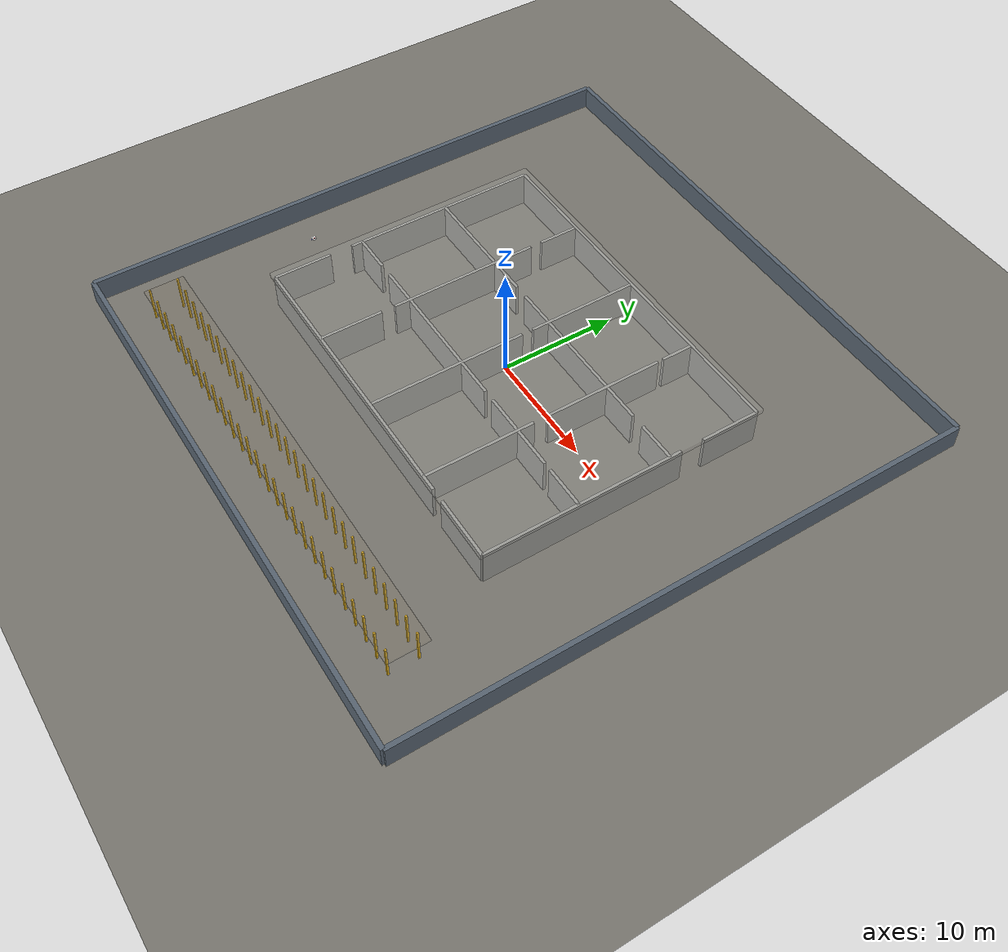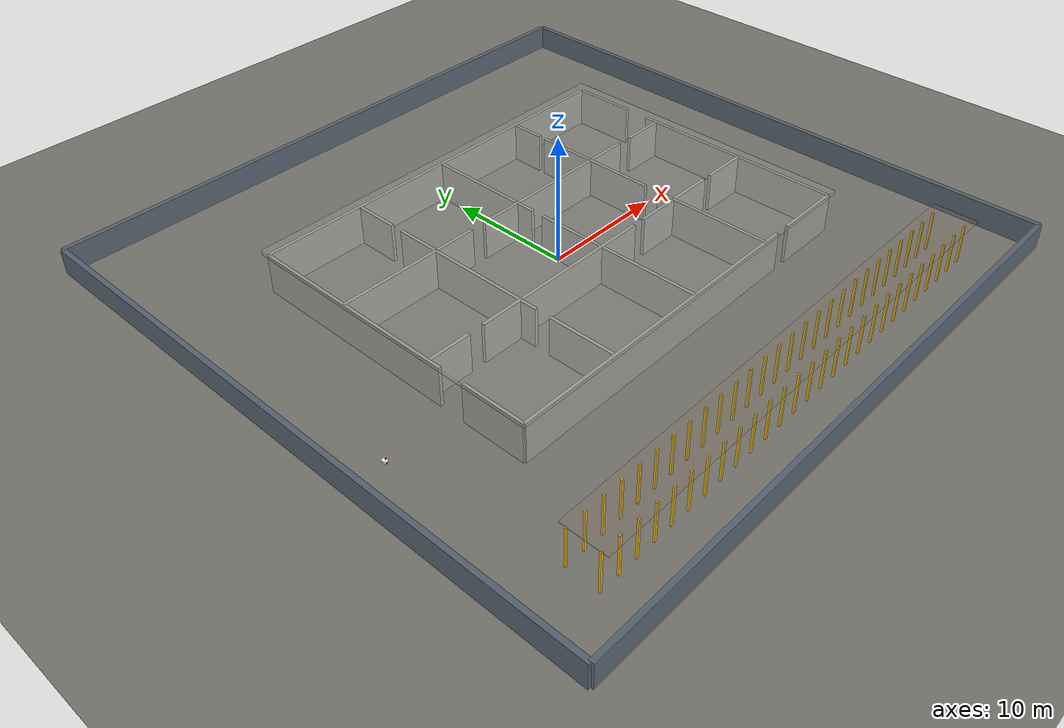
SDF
<sdf version="1.6">
 <world name="w4_structure_decks">
  <model name="ground_plane">
   <static>true</static>
   <link name="link">
    <collision name="collision">
     <geometry><plane><normal>0 0 1</normal><size>300.0 300.0</size></plane></geometry>
    </collision>
    <visual name="visual">
     <geometry><plane><normal>0 0 1</normal><size>300.0 300.0</size></plane></geometry>
     <material>
      <ambient>0.48 0.47 0.44 1</ambient>
      <diffuse>0.48 0.47 0.44 1</diffuse>
      <specular>0.05 0.05 0.05 1</specular>
     </material>
    </visual>
   </link>
  </model>
  <model name="fence_S0">
   <static>true</static>
   <pose>0.0000 -24.5000 1.0000 0 0 0.00000</pose>
   <link name="link">
    <collision name="c"><geometry><box><size>49.0000 0.4000 2.0000</size></box></geometry></collision>
    <visual name="v">
     <geometry><box><size>49.0000 0.4000 2.0000</size></box></geometry>
     <material>
      <ambient>0.350 0.400 0.450 1</ambient>
      <diffuse>0.350 0.400 0.450 1</diffuse>
      <specular>0.1 0.1 0.1 1</specular>
     </material>
    </visual>
   </link>
  </model>
  <model name="fence_N0">
   <static>true</static>
   <pose>0.0000 24.5000 1.0000 0 0 0.00000</pose>
   <link name="link">
    <collision name="c"><geometry><box><size>49.0000 0.4000 2.0000</size></box></geometry></collision>
    <visual name="v">
     <geometry><box><size>49.0000 0.4000 2.0000</size></box></geometry>
     <material>
      <ambient>0.350 0.400 0.450 1</ambient>
      <diffuse>0.350 0.400 0.450 1</diffuse>
      <specular>0.1 0.1 0.1 1</specular>
     </material>
    </visual>
   </link>
  </model>
  <model name="fence_W0">
   <static>true</static>
   <pose>-24.5000 0.0000 1.0000 0 0 1.57080</pose>
   <link name="link">
    <collision name="c"><geometry><box><size>49.0000 0.4000 2.0000</size></box></geometry></collision>
    <visual name="v">
     <geometry><box><size>49.0000 0.4000 2.0000</size></box></geometry>
     <material>
      <ambient>0.350 0.400 0.450 1</ambient>
      <diffuse>0.350 0.400 0.450 1</diffuse>
      <specular>0.1 0.1 0.1 1</specular>
     </material>
    </visual>
   </link>
  </model>
  <model name="fence_E0">
   <static>true</static>
   <pose>24.5000 0.0000 1.0000 0 0 1.57080</pose>
   <link name="link">
    <collision name="c"><geometry><box><size>49.0000 0.4000 2.0000</size></box></geometry></collision>
    <visual name="v">
     <geometry><box><size>49.0000 0.4000 2.0000</size></box></geometry>
     <material>
      <ambient>0.350 0.400 0.450 1</ambient>
      <diffuse>0.350 0.400 0.450 1</diffuse>
      <specular>0.1 0.1 0.1 1</specular>
     </material>
    </visual>
   </link>
  </model>
  <model name="ext_W_0">
   <static>true</static>
   <pose>-16.0000 -9.5000 1.5500 0 0 1.57080</pose>
   <link name="link">
    <collision name="c"><geometry><box><size>5.0000 0.2500 3.1000</size></box></geometry></collision>
    <visual name="v">
     <geometry><box><size>5.0000 0.2500 3.1000</size></box></geometry>
     <material>
      <ambient>0.620 0.620 0.600 1</ambient>
      <diffuse>0.620 0.620 0.600 1</diffuse>
      <specular>0.1 0.1 0.1 1</specular>
     </material>
    </visual>
   </link>
  </model>
  <model name="ext_W_1">
   <static>true</static>
   <pose>-16.0000 3.5000 1.5500 0 0 1.57080</pose>
   <link name="link">
    <collision name="c"><geometry><box><size>17.0000 0.2500 3.1000</size></box></geometry></collision>
    <visual name="v">
     <geometry><box><size>17.0000 0.2500 3.1000</size></box></geometry>
     <material>
      <ambient>0.620 0.620 0.600 1</ambient>
      <diffuse>0.620 0.620 0.600 1</diffuse>
      <specular>0.1 0.1 0.1 1</specular>
     </material>
    </visual>
   </link>
  </model>
  <model name="ext_E_0">
   <static>true</static>
   <pose>16.0000 -3.5000 1.5500 0 0 1.57080</pose>
   <link name="link">
    <collision name="c"><geometry><box><size>17.0000 0.2500 3.1000</size></box></geometry></collision>
    <visual name="v">
     <geometry><box><size>17.0000 0.2500 3.1000</size></box></geometry>
     <material>
      <ambient>0.620 0.620 0.600 1</ambient>
      <diffuse>0.620 0.620 0.600 1</diffuse>
      <specular>0.1 0.1 0.1 1</specular>
     </material>
    </visual>
   </link>
  </model>
  <model name="ext_E_1">
   <static>true</static>
   <pose>16.0000 9.5000 1.5500 0 0 1.57080</pose>
   <link name="link">
    <collision name="c"><geometry><box><size>5.0000 0.2500 3.1000</size></box></geometry></collision>
    <visual name="v">
     <geometry><box><size>5.0000 0.2500 3.1000</size></box></geometry>
     <material>
      <ambient>0.620 0.620 0.600 1</ambient>
      <diffuse>0.620 0.620 0.600 1</diffuse>
      <specular>0.1 0.1 0.1 1</specular>
     </material>
    </visual>
   </link>
  </model>
  <model name="ext_S_0">
   <static>true</static>
   <pose>-3.3000 -12.0000 1.5500 0 0 0.00000</pose>
   <link name="link">
    <collision name="c"><geometry><box><size>25.4000 0.2500 3.1000</size></box></geometry></collision>
    <visual name="v">
     <geometry><box><size>25.4000 0.2500 3.1000</size></box></geometry>
     <material>
      <ambient>0.620 0.620 0.600 1</ambient>
      <diffuse>0.620 0.620 0.600 1</diffuse>
      <specular>0.1 0.1 0.1 1</specular>
     </material>
    </visual>
   </link>
  </model>
  <model name="ext_S_1">
   <static>true</static>
   <pose>13.3000 -12.0000 1.5500 0 0 0.00000</pose>
   <link name="link">
    <collision name="c"><geometry><box><size>5.4000 0.2500 3.1000</size></box></geometry></collision>
    <visual name="v">
     <geometry><box><size>5.4000 0.2500 3.1000</size></box></geometry>
     <material>
      <ambient>0.620 0.620 0.600 1</ambient>
      <diffuse>0.620 0.620 0.600 1</diffuse>
      <specular>0.1 0.1 0.1 1</specular>
     </material>
    </visual>
   </link>
  </model>
  <model name="ext_N_0">
   <static>true</static>
   <pose>0.0000 12.0000 1.5500 0 0 0.00000</pose>
   <link name="link">
    <collision name="c"><geometry><box><size>32.0000 0.2500 3.1000</size></box></geometry></collision>
    <visual name="v">
     <geometry><box><size>32.0000 0.2500 3.1000</size></box></geometry>
     <material>
      <ambient>0.620 0.620 0.600 1</ambient>
      <diffuse>0.620 0.620 0.600 1</diffuse>
      <specular>0.1 0.1 0.1 1</specular>
     </material>
    </visual>
   </link>
  </model>
  <model name="V1_0">
   <static>true</static>
   <pose>-8.0000 -9.3000 1.5500 0 0 1.57080</pose>
   <link name="link">
    <collision name="c"><geometry><box><size>5.4000 0.2500 3.1000</size></box></geometry></collision>
    <visual name="v">
     <geometry><box><size>5.4000 0.2500 3.1000</size></box></geometry>
     <material>
      <ambient>0.620 0.620 0.600 1</ambient>
      <diffuse>0.620 0.620 0.600 1</diffuse>
      <specular>0.1 0.1 0.1 1</specular>
     </material>
    </visual>
   </link>
  </model>
  <model name="V1_1">
   <static>true</static>
   <pose>-8.0000 1.0500 1.5500 0 0 1.57080</pose>
   <link name="link">
    <collision name="c"><geometry><box><size>12.9000 0.2500 3.1000</size></box></geometry></collision>
    <visual name="v">
     <geometry><box><size>12.9000 0.2500 3.1000</size></box></geometry>
     <material>
      <ambient>0.620 0.620 0.600 1</ambient>
      <diffuse>0.620 0.620 0.600 1</diffuse>
      <specular>0.1 0.1 0.1 1</specular>
     </material>
    </visual>
   </link>
  </model>
  <model name="V1_2">
   <static>true</static>
   <pose>-8.0000 10.2500 1.5500 0 0 1.57080</pose>
   <link name="link">
    <collision name="c"><geometry><box><size>3.5000 0.2500 3.1000</size></box></geometry></collision>
    <visual name="v">
     <geometry><box><size>3.5000 0.2500 3.1000</size></box></geometry>
     <material>
      <ambient>0.620 0.620 0.600 1</ambient>
      <diffuse>0.620 0.620 0.600 1</diffuse>
      <specular>0.1 0.1 0.1 1</specular>
     </material>
    </visual>
   </link>
  </model>
  <model name="V2_0">
   <static>true</static>
   <pose>0.0000 -5.2500 1.5500 0 0 1.57080</pose>
   <link name="link">
    <collision name="c"><geometry><box><size>13.5000 0.2500 3.1000</size></box></geometry></collision>
    <visual name="v">
     <geometry><box><size>13.5000 0.2500 3.1000</size></box></geometry>
     <material>
      <ambient>0.620 0.620 0.600 1</ambient>
      <diffuse>0.620 0.620 0.600 1</diffuse>
      <specular>0.1 0.1 0.1 1</specular>
     </material>
    </visual>
   </link>
  </model>
  <model name="V2_1">
   <static>true</static>
   <pose>0.0000 7.2500 1.5500 0 0 1.57080</pose>
   <link name="link">
    <collision name="c"><geometry><box><size>9.5000 0.2500 3.1000</size></box></geometry></collision>
    <visual name="v">
     <geometry><box><size>9.5000 0.2500 3.1000</size></box></geometry>
     <material>
      <ambient>0.620 0.620 0.600 1</ambient>
      <diffuse>0.620 0.620 0.600 1</diffuse>
      <specular>0.1 0.1 0.1 1</specular>
     </material>
    </visual>
   </link>
  </model>
  <model name="V3_0">
   <static>true</static>
   <pose>8.0000 -7.3000 1.5500 0 0 1.57080</pose>
   <link name="link">
    <collision name="c"><geometry><box><size>9.4000 0.2500 3.1000</size></box></geometry></collision>
    <visual name="v">
     <geometry><box><size>9.4000 0.2500 3.1000</size></box></geometry>
     <material>
      <ambient>0.620 0.620 0.600 1</ambient>
      <diffuse>0.620 0.620 0.600 1</diffuse>
      <specular>0.1 0.1 0.1 1</specular>
     </material>
    </visual>
   </link>
  </model>
  <model name="V3_1">
   <static>true</static>
   <pose>8.0000 3.6750 1.5500 0 0 1.57080</pose>
   <link name="link">
    <collision name="c"><geometry><box><size>10.1500 0.2500 3.1000</size></box></geometry></collision>
    <visual name="v">
     <geometry><box><size>10.1500 0.2500 3.1000</size></box></geometry>
     <material>
      <ambient>0.620 0.620 0.600 1</ambient>
      <diffuse>0.620 0.620 0.600 1</diffuse>
      <specular>0.1 0.1 0.1 1</specular>
     </material>
    </visual>
   </link>
  </model>
  <model name="V3_2">
   <static>true</static>
   <pose>8.0000 10.6250 1.5500 0 0 1.57080</pose>
   <link name="link">
    <collision name="c"><geometry><box><size>2.7500 0.2500 3.1000</size></box></geometry></collision>
    <visual name="v">
     <geometry><box><size>2.7500 0.2500 3.1000</size></box></geometry>
     <material>
      <ambient>0.620 0.620 0.600 1</ambient>
      <diffuse>0.620 0.620 0.600 1</diffuse>
      <specular>0.1 0.1 0.1 1</specular>
     </material>
    </visual>
   </link>
  </model>
  <model name="H1_0">
   <static>true</static>
   <pose>-14.3000 -4.0000 1.5500 0 0 0.00000</pose>
   <link name="link">
    <collision name="c"><geometry><box><size>3.4000 0.2500 3.1000</size></box></geometry></collision>
    <visual name="v">
     <geometry><box><size>3.4000 0.2500 3.1000</size></box></geometry>
     <material>
      <ambient>0.620 0.620 0.600 1</ambient>
      <diffuse>0.620 0.620 0.600 1</diffuse>
      <specular>0.1 0.1 0.1 1</specular>
     </material>
    </visual>
   </link>
  </model>
  <model name="H1_1">
   <static>true</static>
   <pose>-3.9500 -4.0000 1.5500 0 0 0.00000</pose>
   <link name="link">
    <collision name="c"><geometry><box><size>14.9000 0.2500 3.1000</size></box></geometry></collision>
    <visual name="v">
     <geometry><box><size>14.9000 0.2500 3.1000</size></box></geometry>
     <material>
      <ambient>0.620 0.620 0.600 1</ambient>
      <diffuse>0.620 0.620 0.600 1</diffuse>
      <specular>0.1 0.1 0.1 1</specular>
     </material>
    </visual>
   </link>
  </model>
  <model name="H1_2">
   <static>true</static>
   <pose>8.0750 -4.0000 1.5500 0 0 0.00000</pose>
   <link name="link">
    <collision name="c"><geometry><box><size>7.1500 0.2500 3.1000</size></box></geometry></collision>
    <visual name="v">
     <geometry><box><size>7.1500 0.2500 3.1000</size></box></geometry>
     <material>
      <ambient>0.620 0.620 0.600 1</ambient>
      <diffuse>0.620 0.620 0.600 1</diffuse>
      <specular>0.1 0.1 0.1 1</specular>
     </material>
    </visual>
   </link>
  </model>
  <model name="H1_3">
   <static>true</static>
   <pose>14.1750 -4.0000 1.5500 0 0 0.00000</pose>
   <link name="link">
    <collision name="c"><geometry><box><size>3.6500 0.2500 3.1000</size></box></geometry></collision>
    <visual name="v">
     <geometry><box><size>3.6500 0.2500 3.1000</size></box></geometry>
     <material>
      <ambient>0.620 0.620 0.600 1</ambient>
      <diffuse>0.620 0.620 0.600 1</diffuse>
      <specular>0.1 0.1 0.1 1</specular>
     </material>
    </visual>
   </link>
  </model>
  <model name="H2_0">
   <static>true</static>
   <pose>-10.3000 4.0000 1.5500 0 0 0.00000</pose>
   <link name="link">
    <collision name="c"><geometry><box><size>11.4000 0.2500 3.1000</size></box></geometry></collision>
    <visual name="v">
     <geometry><box><size>11.4000 0.2500 3.1000</size></box></geometry>
     <material>
      <ambient>0.620 0.620 0.600 1</ambient>
      <diffuse>0.620 0.620 0.600 1</diffuse>
      <specular>0.1 0.1 0.1 1</specular>
     </material>
    </visual>
   </link>
  </model>
  <model name="H2_1">
   <static>true</static>
   <pose>4.0000 4.0000 1.5500 0 0 0.00000</pose>
   <link name="link">
    <collision name="c"><geometry><box><size>14.8000 0.2500 3.1000</size></box></geometry></collision>
    <visual name="v">
     <geometry><box><size>14.8000 0.2500 3.1000</size></box></geometry>
     <material>
      <ambient>0.620 0.620 0.600 1</ambient>
      <diffuse>0.620 0.620 0.600 1</diffuse>
      <specular>0.1 0.1 0.1 1</specular>
     </material>
    </visual>
   </link>
  </model>
  <model name="H2_2">
   <static>true</static>
   <pose>14.3000 4.0000 1.5500 0 0 0.00000</pose>
   <link name="link">
    <collision name="c"><geometry><box><size>3.4000 0.2500 3.1000</size></box></geometry></collision>
    <visual name="v">
     <geometry><box><size>3.4000 0.2500 3.1000</size></box></geometry>
     <material>
      <ambient>0.620 0.620 0.600 1</ambient>
      <diffuse>0.620 0.620 0.600 1</diffuse>
      <specular>0.1 0.1 0.1 1</specular>
     </material>
    </visual>
   </link>
  </model>
  <model name="deck">
   <static>true</static>
   <pose>0.0000 0.0000 3.3000 0 0 0.00000</pose>
   <link name="link">
    <collision name="c"><geometry><box><size>32.6000 24.6000 0.4000</size></box></geometry></collision>
    <visual name="v">
     <transparency>0.8</transparency>
     <geometry><box><size>32.6000 24.6000 0.4000</size></box></geometry>
     <material>
      <ambient>0.720 0.720 0.700 1</ambient>
      <diffuse>0.720 0.720 0.700 1</diffuse>
      <specular>0.1 0.1 0.1 1</specular>
     </material>
    </visual>
   </link>
  </model>
  <model name="post_0_0">
   <static>true</static>
   <pose>-20.0000 -18.8000 1.5500 0 0 0.00000</pose>
   <link name="link">
    <collision name="c"><geometry><box><size>0.1500 0.1500 3.1000</size></box></geometry></collision>
    <visual name="v">
     <geometry><box><size>0.1500 0.1500 3.1000</size></box></geometry>
     <material>
      <ambient>0.900 0.700 0.100 1</ambient>
      <diffuse>0.900 0.700 0.100 1</diffuse>
      <specular>0.1 0.1 0.1 1</specular>
     </material>
    </visual>
   </link>
  </model>
  <model name="post_0_1">
   <static>true</static>
   <pose>-20.0000 -21.2000 1.5500 0 0 0.00000</pose>
   <link name="link">
    <collision name="c"><geometry><box><size>0.1500 0.1500 3.1000</size></box></geometry></collision>
    <visual name="v">
     <geometry><box><size>0.1500 0.1500 3.1000</size></box></geometry>
     <material>
      <ambient>0.900 0.700 0.100 1</ambient>
      <diffuse>0.900 0.700 0.100 1</diffuse>
      <specular>0.1 0.1 0.1 1</specular>
     </material>
    </visual>
   </link>
  </model>
  <model name="post_1_0">
   <static>true</static>
   <pose>-18.5000 -18.8000 1.5500 0 0 0.00000</pose>
   <link name="link">
    <collision name="c"><geometry><box><size>0.1500 0.1500 3.1000</size></box></geometry></collision>
    <visual name="v">
     <geometry><box><size>0.1500 0.1500 3.1000</size></box></geometry>
     <material>
      <ambient>0.900 0.700 0.100 1</ambient>
      <diffuse>0.900 0.700 0.100 1</diffuse>
      <specular>0.1 0.1 0.1 1</specular>
     </material>
    </visual>
   </link>
  </model>
  <model name="post_1_1">
   <static>true</static>
   <pose>-18.5000 -21.2000 1.5500 0 0 0.00000</pose>
   <link name="link">
    <collision name="c"><geometry><box><size>0.1500 0.1500 3.1000</size></box></geometry></collision>
    <visual name="v">
     <geometry><box><size>0.1500 0.1500 3.1000</size></box></geometry>
     <material>
      <ambient>0.900 0.700 0.100 1</ambient>
      <diffuse>0.900 0.700 0.100 1</diffuse>
      <specular>0.1 0.1 0.1 1</specular>
     </material>
    </visual>
   </link>
  </model>
  <model name="post_2_0">
   <static>true</static>
   <pose>-17.0000 -18.8000 1.5500 0 0 0.00000</pose>
   <link name="link">
    <collision name="c"><geometry><box><size>0.1500 0.1500 3.1000</size></box></geometry></collision>
    <visual name="v">
     <geometry><box><size>0.1500 0.1500 3.1000</size></box></geometry>
     <material>
      <ambient>0.900 0.700 0.100 1</ambient>
      <diffuse>0.900 0.700 0.100 1</diffuse>
      <specular>0.1 0.1 0.1 1</specular>
     </material>
    </visual>
   </link>
  </model>
  <model name="post_2_1">
   <static>true</static>
   <pose>-17.0000 -21.2000 1.5500 0 0 0.00000</pose>
   <link name="link">
    <collision name="c"><geometry><box><size>0.1500 0.1500 3.1000</size></box></geometry></collision>
    <visual name="v">
     <geometry><box><size>0.1500 0.1500 3.1000</size></box></geometry>
     <material>
      <ambient>0.900 0.700 0.100 1</ambient>
      <diffuse>0.900 0.700 0.100 1</diffuse>
      <specular>0.1 0.1 0.1 1</specular>
     </material>
    </visual>
   </link>
  </model>
  <model name="post_3_0">
   <static>true</static>
   <pose>-15.5000 -18.8000 1.5500 0 0 0.00000</pose>
   <link name="link">
    <collision name="c"><geometry><box><size>0.1500 0.1500 3.1000</size></box></geometry></collision>
    <visual name="v">
     <geometry><box><size>0.1500 0.1500 3.1000</size></box></geometry>
     <material>
      <ambient>0.900 0.700 0.100 1</ambient>
      <diffuse>0.900 0.700 0.100 1</diffuse>
      <specular>0.1 0.1 0.1 1</specular>
     </material>
    </visual>
   </link>
  </model>
  <model name="post_3_1">
   <static>true</static>
   <pose>-15.5000 -21.2000 1.5500 0 0 0.00000</pose>
   <link name="link">
    <collision name="c"><geometry><box><size>0.1500 0.1500 3.1000</size></box></geometry></collision>
    <visual name="v">
     <geometry><box><size>0.1500 0.1500 3.1000</size></box></geometry>
     <material>
      <ambient>0.900 0.700 0.100 1</ambient>
      <diffuse>0.900 0.700 0.100 1</diffuse>
      <specular>0.1 0.1 0.1 1</specular>
     </material>
    </visual>
   </link>
  </model>
  <model name="post_4_0">
   <static>true</static>
   <pose>-14.0000 -18.8000 1.5500 0 0 0.00000</pose>
   <link name="link">
    <collision name="c"><geometry><box><size>0.1500 0.1500 3.1000</size></box></geometry></collision>
    <visual name="v">
     <geometry><box><size>0.1500 0.1500 3.1000</size></box></geometry>
     <material>
      <ambient>0.900 0.700 0.100 1</ambient>
      <diffuse>0.900 0.700 0.100 1</diffuse>
      <specular>0.1 0.1 0.1 1</specular>
     </material>
    </visual>
   </link>
  </model>
  <model name="post_4_1">
   <static>true</static>
   <pose>-14.0000 -21.2000 1.5500 0 0 0.00000</pose>
   <link name="link">
    <collision name="c"><geometry><box><size>0.1500 0.1500 3.1000</size></box></geometry></collision>
    <visual name="v">
     <geometry><box><size>0.1500 0.1500 3.1000</size></box></geometry>
     <material>
      <ambient>0.900 0.700 0.100 1</ambient>
      <diffuse>0.900 0.700 0.100 1</diffuse>
      <specular>0.1 0.1 0.1 1</specular>
     </material>
    </visual>
   </link>
  </model>
  <model name="post_5_0">
   <static>true</static>
   <pose>-12.5000 -18.8000 1.5500 0 0 0.00000</pose>
   <link name="link">
    <collision name="c"><geometry><box><size>0.1500 0.1500 3.1000</size></box></geometry></collision>
    <visual name="v">
     <geometry><box><size>0.1500 0.1500 3.1000</size></box></geometry>
     <material>
      <ambient>0.900 0.700 0.100 1</ambient>
      <diffuse>0.900 0.700 0.100 1</diffuse>
      <specular>0.1 0.1 0.1 1</specular>
     </material>
    </visual>
   </link>
  </model>
  <model name="post_5_1">
   <static>true</static>
   <pose>-12.5000 -21.2000 1.5500 0 0 0.00000</pose>
   <link name="link">
    <collision name="c"><geometry><box><size>0.1500 0.1500 3.1000</size></box></geometry></collision>
    <visual name="v">
     <geometry><box><size>0.1500 0.1500 3.1000</size></box></geometry>
     <material>
      <ambient>0.900 0.700 0.100 1</ambient>
      <diffuse>0.900 0.700 0.100 1</diffuse>
      <specular>0.1 0.1 0.1 1</specular>
     </material>
    </visual>
   </link>
  </model>
  <model name="post_6_0">
   <static>true</static>
   <pose>-11.0000 -18.8000 1.5500 0 0 0.00000</pose>
   <link name="link">
    <collision name="c"><geometry><box><size>0.1500 0.1500 3.1000</size></box></geometry></collision>
    <visual name="v">
     <geometry><box><size>0.1500 0.1500 3.1000</size></box></geometry>
     <material>
      <ambient>0.900 0.700 0.100 1</ambient>
      <diffuse>0.900 0.700 0.100 1</diffuse>
      <specular>0.1 0.1 0.1 1</specular>
     </material>
    </visual>
   </link>
  </model>
  <model name="post_6_1">
   <static>true</static>
   <pose>-11.0000 -21.2000 1.5500 0 0 0.00000</pose>
   <link name="link">
    <collision name="c"><geometry><box><size>0.1500 0.1500 3.1000</size></box></geometry></collision>
    <visual name="v">
     <geometry><box><size>0.1500 0.1500 3.1000</size></box></geometry>
     <material>
      <ambient>0.900 0.700 0.100 1</ambient>
      <diffuse>0.900 0.700 0.100 1</diffuse>
      <specular>0.1 0.1 0.1 1</specular>
     </material>
    </visual>
   </link>
  </model>
  <model name="post_7_0">
   <static>true</static>
   <pose>-9.5000 -18.8000 1.5500 0 0 0.00000</pose>
   <link name="link">
    <collision name="c"><geometry><box><size>0.1500 0.1500 3.1000</size></box></geometry></collision>
    <visual name="v">
     <geometry><box><size>0.1500 0.1500 3.1000</size></box></geometry>
     <material>
      <ambient>0.900 0.700 0.100 1</ambient>
      <diffuse>0.900 0.700 0.100 1</diffuse>
      <specular>0.1 0.1 0.1 1</specular>
     </material>
    </visual>
   </link>
  </model>
  <model name="post_7_1">
   <static>true</static>
   <pose>-9.5000 -21.2000 1.5500 0 0 0.00000</pose>
   <link name="link">
    <collision name="c"><geometry><box><size>0.1500 0.1500 3.1000</size></box></geometry></collision>
    <visual name="v">
     <geometry><box><size>0.1500 0.1500 3.1000</size></box></geometry>
     <material>
      <ambient>0.900 0.700 0.100 1</ambient>
      <diffuse>0.900 0.700 0.100 1</diffuse>
      <specular>0.1 0.1 0.1 1</specular>
     </material>
    </visual>
   </link>
  </model>
  <model name="post_8_0">
   <static>true</static>
   <pose>-8.0000 -18.8000 1.5500 0 0 0.00000</pose>
   <link name="link">
    <collision name="c"><geometry><box><size>0.1500 0.1500 3.1000</size></box></geometry></collision>
    <visual name="v">
     <geometry><box><size>0.1500 0.1500 3.1000</size></box></geometry>
     <material>
      <ambient>0.900 0.700 0.100 1</ambient>
      <diffuse>0.900 0.700 0.100 1</diffuse>
      <specular>0.1 0.1 0.1 1</specular>
     </material>
    </visual>
   </link>
  </model>
  <model name="post_8_1">
   <static>true</static>
   <pose>-8.0000 -21.2000 1.5500 0 0 0.00000</pose>
   <link name="link">
    <collision name="c"><geometry><box><size>0.1500 0.1500 3.1000</size></box></geometry></collision>
    <visual name="v">
     <geometry><box><size>0.1500 0.1500 3.1000</size></box></geometry>
     <material>
      <ambient>0.900 0.700 0.100 1</ambient>
      <diffuse>0.900 0.700 0.100 1</diffuse>
      <specular>0.1 0.1 0.1 1</specular>
     </material>
    </visual>
   </link>
  </model>
  <model name="post_9_0">
   <static>true</static>
   <pose>-6.5000 -18.8000 1.5500 0 0 0.00000</pose>
   <link name="link">
    <collision name="c"><geometry><box><size>0.1500 0.1500 3.1000</size></box></geometry></collision>
    <visual name="v">
     <geometry><box><size>0.1500 0.1500 3.1000</size></box></geometry>
     <material>
      <ambient>0.900 0.700 0.100 1</ambient>
      <diffuse>0.900 0.700 0.100 1</diffuse>
      <specular>0.1 0.1 0.1 1</specular>
     </material>
    </visual>
   </link>
  </model>
  <model name="post_9_1">
   <static>true</static>
   <pose>-6.5000 -21.2000 1.5500 0 0 0.00000</pose>
   <link name="link">
    <collision name="c"><geometry><box><size>0.1500 0.1500 3.1000</size></box></geometry></collision>
    <visual name="v">
     <geometry><box><size>0.1500 0.1500 3.1000</size></box></geometry>
     <material>
      <ambient>0.900 0.700 0.100 1</ambient>
      <diffuse>0.900 0.700 0.100 1</diffuse>
      <specular>0.1 0.1 0.1 1</specular>
     </material>
    </visual>
   </link>
  </model>
  <model name="post_10_0">
   <static>true</static>
   <pose>-5.0000 -18.8000 1.5500 0 0 0.00000</pose>
   <link name="link">
    <collision name="c"><geometry><box><size>0.1500 0.1500 3.1000</size></box></geometry></collision>
    <visual name="v">
     <geometry><box><size>0.1500 0.1500 3.1000</size></box></geometry>
     <material>
      <ambient>0.900 0.700 0.100 1</ambient>
      <diffuse>0.900 0.700 0.100 1</diffuse>
      <specular>0.1 0.1 0.1 1</specular>
     </material>
    </visual>
   </link>
  </model>
  <model name="post_10_1">
   <static>true</static>
   <pose>-5.0000 -21.2000 1.5500 0 0 0.00000</pose>
   <link name="link">
    <collision name="c"><geometry><box><size>0.1500 0.1500 3.1000</size></box></geometry></collision>
    <visual name="v">
     <geometry><box><size>0.1500 0.1500 3.1000</size></box></geometry>
     <material>
      <ambient>0.900 0.700 0.100 1</ambient>
      <diffuse>0.900 0.700 0.100 1</diffuse>
      <specular>0.1 0.1 0.1 1</specular>
     </material>
    </visual>
   </link>
  </model>
  <model name="post_11_0">
   <static>true</static>
   <pose>-3.5000 -18.8000 1.5500 0 0 0.00000</pose>
   <link name="link">
    <collision name="c"><geometry><box><size>0.1500 0.1500 3.1000</size></box></geometry></collision>
    <visual name="v">
     <geometry><box><size>0.1500 0.1500 3.1000</size></box></geometry>
     <material>
      <ambient>0.900 0.700 0.100 1</ambient>
      <diffuse>0.900 0.700 0.100 1</diffuse>
      <specular>0.1 0.1 0.1 1</specular>
     </material>
    </visual>
   </link>
  </model>
  <model name="post_11_1">
   <static>true</static>
   <pose>-3.5000 -21.2000 1.5500 0 0 0.00000</pose>
   <link name="link">
    <collision name="c"><geometry><box><size>0.1500 0.1500 3.1000</size></box></geometry></collision>
    <visual name="v">
     <geometry><box><size>0.1500 0.1500 3.1000</size></box></geometry>
     <material>
      <ambient>0.900 0.700 0.100 1</ambient>
      <diffuse>0.900 0.700 0.100 1</diffuse>
      <specular>0.1 0.1 0.1 1</specular>
     </material>
    </visual>
   </link>
  </model>
  <model name="post_12_0">
   <static>true</static>
   <pose>-2.0000 -18.8000 1.5500 0 0 0.00000</pose>
   <link name="link">
    <collision name="c"><geometry><box><size>0.1500 0.1500 3.1000</size></box></geometry></collision>
    <visual name="v">
     <geometry><box><size>0.1500 0.1500 3.1000</size></box></geometry>
     <material>
      <ambient>0.900 0.700 0.100 1</ambient>
      <diffuse>0.900 0.700 0.100 1</diffuse>
      <specular>0.1 0.1 0.1 1</specular>
     </material>
    </visual>
   </link>
  </model>
  <model name="post_12_1">
   <static>true</static>
   <pose>-2.0000 -21.2000 1.5500 0 0 0.00000</pose>
   <link name="link">
    <collision name="c"><geometry><box><size>0.1500 0.1500 3.1000</size></box></geometry></collision>
    <visual name="v">
     <geometry><box><size>0.1500 0.1500 3.1000</size></box></geometry>
     <material>
      <ambient>0.900 0.700 0.100 1</ambient>
      <diffuse>0.900 0.700 0.100 1</diffuse>
      <specular>0.1 0.1 0.1 1</specular>
     </material>
    </visual>
   </link>
  </model>
  <model name="post_13_0">
   <static>true</static>
   <pose>-0.5000 -18.8000 1.5500 0 0 0.00000</pose>
   <link name="link">
    <collision name="c"><geometry><box><size>0.1500 0.1500 3.1000</size></box></geometry></collision>
    <visual name="v">
     <geometry><box><size>0.1500 0.1500 3.1000</size></box></geometry>
     <material>
      <ambient>0.900 0.700 0.100 1</ambient>
      <diffuse>0.900 0.700 0.100 1</diffuse>
      <specular>0.1 0.1 0.1 1</specular>
     </material>
    </visual>
   </link>
  </model>
  <model name="post_13_1">
   <static>true</static>
   <pose>-0.5000 -21.2000 1.5500 0 0 0.00000</pose>
   <link name="link">
    <collision name="c"><geometry><box><size>0.1500 0.1500 3.1000</size></box></geometry></collision>
    <visual name="v">
     <geometry><box><size>0.1500 0.1500 3.1000</size></box></geometry>
     <material>
      <ambient>0.900 0.700 0.100 1</ambient>
      <diffuse>0.900 0.700 0.100 1</diffuse>
      <specular>0.1 0.1 0.1 1</specular>
     </material>
    </visual>
   </link>
  </model>
  <model name="post_14_0">
   <static>true</static>
   <pose>1.0000 -18.8000 1.5500 0 0 0.00000</pose>
   <link name="link">
    <collision name="c"><geometry><box><size>0.1500 0.1500 3.1000</size></box></geometry></collision>
    <visual name="v">
     <geometry><box><size>0.1500 0.1500 3.1000</size></box></geometry>
     <material>
      <ambient>0.900 0.700 0.100 1</ambient>
      <diffuse>0.900 0.700 0.100 1</diffuse>
      <specular>0.1 0.1 0.1 1</specular>
     </material>
    </visual>
   </link>
  </model>
  <model name="post_14_1">
   <static>true</static>
   <pose>1.0000 -21.2000 1.5500 0 0 0.00000</pose>
   <link name="link">
    <collision name="c"><geometry><box><size>0.1500 0.1500 3.1000</size></box></geometry></collision>
    <visual name="v">
     <geometry><box><size>0.1500 0.1500 3.1000</size></box></geometry>
     <material>
      <ambient>0.900 0.700 0.100 1</ambient>
      <diffuse>0.900 0.700 0.100 1</diffuse>
      <specular>0.1 0.1 0.1 1</specular>
     </material>
    </visual>
   </link>
  </model>
  <model name="post_15_0">
   <static>true</static>
   <pose>2.5000 -18.8000 1.5500 0 0 0.00000</pose>
   <link name="link">
    <collision name="c"><geometry><box><size>0.1500 0.1500 3.1000</size></box></geometry></collision>
    <visual name="v">
     <geometry><box><size>0.1500 0.1500 3.1000</size></box></geometry>
     <material>
      <ambient>0.900 0.700 0.100 1</ambient>
      <diffuse>0.900 0.700 0.100 1</diffuse>
      <specular>0.1 0.1 0.1 1</specular>
     </material>
    </visual>
   </link>
  </model>
  <model name="post_15_1">
   <static>true</static>
   <pose>2.5000 -21.2000 1.5500 0 0 0.00000</pose>
   <link name="link">
    <collision name="c"><geometry><box><size>0.1500 0.1500 3.1000</size></box></geometry></collision>
    <visual name="v">
     <geometry><box><size>0.1500 0.1500 3.1000</size></box></geometry>
     <material>
      <ambient>0.900 0.700 0.100 1</ambient>
      <diffuse>0.900 0.700 0.100 1</diffuse>
      <specular>0.1 0.1 0.1 1</specular>
     </material>
    </visual>
   </link>
  </model>
  <model name="post_16_0">
   <static>true</static>
   <pose>4.0000 -18.8000 1.5500 0 0 0.00000</pose>
   <link name="link">
    <collision name="c"><geometry><box><size>0.1500 0.1500 3.1000</size></box></geometry></collision>
    <visual name="v">
     <geometry><box><size>0.1500 0.1500 3.1000</size></box></geometry>
     <material>
      <ambient>0.900 0.700 0.100 1</ambient>
      <diffuse>0.900 0.700 0.100 1</diffuse>
      <specular>0.1 0.1 0.1 1</specular>
     </material>
    </visual>
   </link>
  </model>
  <model name="post_16_1">
   <static>true</static>
   <pose>4.0000 -21.2000 1.5500 0 0 0.00000</pose>
   <link name="link">
    <collision name="c"><geometry><box><size>0.1500 0.1500 3.1000</size></box></geometry></collision>
    <visual name="v">
     <geometry><box><size>0.1500 0.1500 3.1000</size></box></geometry>
     <material>
      <ambient>0.900 0.700 0.100 1</ambient>
      <diffuse>0.900 0.700 0.100 1</diffuse>
      <specular>0.1 0.1 0.1 1</specular>
     </material>
    </visual>
   </link>
  </model>
  <model name="post_17_0">
   <static>true</static>
   <pose>5.5000 -18.8000 1.5500 0 0 0.00000</pose>
   <link name="link">
    <collision name="c"><geometry><box><size>0.1500 0.1500 3.1000</size></box></geometry></collision>
    <visual name="v">
     <geometry><box><size>0.1500 0.1500 3.1000</size></box></geometry>
     <material>
      <ambient>0.900 0.700 0.100 1</ambient>
      <diffuse>0.900 0.700 0.100 1</diffuse>
      <specular>0.1 0.1 0.1 1</specular>
     </material>
    </visual>
   </link>
  </model>
  <model name="post_17_1">
   <static>true</static>
   <pose>5.5000 -21.2000 1.5500 0 0 0.00000</pose>
   <link name="link">
    <collision name="c"><geometry><box><size>0.1500 0.1500 3.1000</size></box></geometry></collision>
    <visual name="v">
     <geometry><box><size>0.1500 0.1500 3.1000</size></box></geometry>
     <material>
      <ambient>0.900 0.700 0.100 1</ambient>
      <diffuse>0.900 0.700 0.100 1</diffuse>
      <specular>0.1 0.1 0.1 1</specular>
     </material>
    </visual>
   </link>
  </model>
  <model name="post_18_0">
   <static>true</static>
   <pose>7.0000 -18.8000 1.5500 0 0 0.00000</pose>
   <link name="link">
    <collision name="c"><geometry><box><size>0.1500 0.1500 3.1000</size></box></geometry></collision>
    <visual name="v">
     <geometry><box><size>0.1500 0.1500 3.1000</size></box></geometry>
     <material>
      <ambient>0.900 0.700 0.100 1</ambient>
      <diffuse>0.900 0.700 0.100 1</diffuse>
      <specular>0.1 0.1 0.1 1</specular>
     </material>
    </visual>
   </link>
  </model>
  <model name="post_18_1">
   <static>true</static>
   <pose>7.0000 -21.2000 1.5500 0 0 0.00000</pose>
   <link name="link">
    <collision name="c"><geometry><box><size>0.1500 0.1500 3.1000</size></box></geometry></collision>
    <visual name="v">
     <geometry><box><size>0.1500 0.1500 3.1000</size></box></geometry>
     <material>
      <ambient>0.900 0.700 0.100 1</ambient>
      <diffuse>0.900 0.700 0.100 1</diffuse>
      <specular>0.1 0.1 0.1 1</specular>
     </material>
    </visual>
   </link>
  </model>
  <model name="post_19_0">
   <static>true</static>
   <pose>8.5000 -18.8000 1.5500 0 0 0.00000</pose>
   <link name="link">
    <collision name="c"><geometry><box><size>0.1500 0.1500 3.1000</size></box></geometry></collision>
    <visual name="v">
     <geometry><box><size>0.1500 0.1500 3.1000</size></box></geometry>
     <material>
      <ambient>0.900 0.700 0.100 1</ambient>
      <diffuse>0.900 0.700 0.100 1</diffuse>
      <specular>0.1 0.1 0.1 1</specular>
     </material>
    </visual>
   </link>
  </model>
  <model name="post_19_1">
   <static>true</static>
   <pose>8.5000 -21.2000 1.5500 0 0 0.00000</pose>
   <link name="link">
    <collision name="c"><geometry><box><size>0.1500 0.1500 3.1000</size></box></geometry></collision>
    <visual name="v">
     <geometry><box><size>0.1500 0.1500 3.1000</size></box></geometry>
     <material>
      <ambient>0.900 0.700 0.100 1</ambient>
      <diffuse>0.900 0.700 0.100 1</diffuse>
      <specular>0.1 0.1 0.1 1</specular>
     </material>
    </visual>
   </link>
  </model>
  <model name="post_20_0">
   <static>true</static>
   <pose>10.0000 -18.8000 1.5500 0 0 0.00000</pose>
   <link name="link">
    <collision name="c"><geometry><box><size>0.1500 0.1500 3.1000</size></box></geometry></collision>
    <visual name="v">
     <geometry><box><size>0.1500 0.1500 3.1000</size></box></geometry>
     <material>
      <ambient>0.900 0.700 0.100 1</ambient>
      <diffuse>0.900 0.700 0.100 1</diffuse>
      <specular>0.1 0.1 0.1 1</specular>
     </material>
    </visual>
   </link>
  </model>
  <model name="post_20_1">
   <static>true</static>
   <pose>10.0000 -21.2000 1.5500 0 0 0.00000</pose>
   <link name="link">
    <collision name="c"><geometry><box><size>0.1500 0.1500 3.1000</size></box></geometry></collision>
    <visual name="v">
     <geometry><box><size>0.1500 0.1500 3.1000</size></box></geometry>
     <material>
      <ambient>0.900 0.700 0.100 1</ambient>
      <diffuse>0.900 0.700 0.100 1</diffuse>
      <specular>0.1 0.1 0.1 1</specular>
     </material>
    </visual>
   </link>
  </model>
  <model name="post_21_0">
   <static>true</static>
   <pose>11.5000 -18.8000 1.5500 0 0 0.00000</pose>
   <link name="link">
    <collision name="c"><geometry><box><size>0.1500 0.1500 3.1000</size></box></geometry></collision>
    <visual name="v">
     <geometry><box><size>0.1500 0.1500 3.1000</size></box></geometry>
     <material>
      <ambient>0.900 0.700 0.100 1</ambient>
      <diffuse>0.900 0.700 0.100 1</diffuse>
      <specular>0.1 0.1 0.1 1</specular>
     </material>
    </visual>
   </link>
  </model>
  <model name="post_21_1">
   <static>true</static>
   <pose>11.5000 -21.2000 1.5500 0 0 0.00000</pose>
   <link name="link">
    <collision name="c"><geometry><box><size>0.1500 0.1500 3.1000</size></box></geometry></collision>
    <visual name="v">
     <geometry><box><size>0.1500 0.1500 3.1000</size></box></geometry>
     <material>
      <ambient>0.900 0.700 0.100 1</ambient>
      <diffuse>0.900 0.700 0.100 1</diffuse>
      <specular>0.1 0.1 0.1 1</specular>
     </material>
    </visual>
   </link>
  </model>
  <model name="post_22_0">
   <static>true</static>
   <pose>13.0000 -18.8000 1.5500 0 0 0.00000</pose>
   <link name="link">
    <collision name="c"><geometry><box><size>0.1500 0.1500 3.1000</size></box></geometry></collision>
    <visual name="v">
     <geometry><box><size>0.1500 0.1500 3.1000</size></box></geometry>
     <material>
      <ambient>0.900 0.700 0.100 1</ambient>
      <diffuse>0.900 0.700 0.100 1</diffuse>
      <specular>0.1 0.1 0.1 1</specular>
     </material>
    </visual>
   </link>
  </model>
  <model name="post_22_1">
   <static>true</static>
   <pose>13.0000 -21.2000 1.5500 0 0 0.00000</pose>
   <link name="link">
    <collision name="c"><geometry><box><size>0.1500 0.1500 3.1000</size></box></geometry></collision>
    <visual name="v">
     <geometry><box><size>0.1500 0.1500 3.1000</size></box></geometry>
     <material>
      <ambient>0.900 0.700 0.100 1</ambient>
      <diffuse>0.900 0.700 0.100 1</diffuse>
      <specular>0.1 0.1 0.1 1</specular>
     </material>
    </visual>
   </link>
  </model>
  <model name="post_23_0">
   <static>true</static>
   <pose>14.5000 -18.8000 1.5500 0 0 0.00000</pose>
   <link name="link">
    <collision name="c"><geometry><box><size>0.1500 0.1500 3.1000</size></box></geometry></collision>
    <visual name="v">
     <geometry><box><size>0.1500 0.1500 3.1000</size></box></geometry>
     <material>
      <ambient>0.900 0.700 0.100 1</ambient>
      <diffuse>0.900 0.700 0.100 1</diffuse>
      <specular>0.1 0.1 0.1 1</specular>
     </material>
    </visual>
   </link>
  </model>
  <model name="post_23_1">
   <static>true</static>
   <pose>14.5000 -21.2000 1.5500 0 0 0.00000</pose>
   <link name="link">
    <collision name="c"><geometry><box><size>0.1500 0.1500 3.1000</size></box></geometry></collision>
    <visual name="v">
     <geometry><box><size>0.1500 0.1500 3.1000</size></box></geometry>
     <material>
      <ambient>0.900 0.700 0.100 1</ambient>
      <diffuse>0.900 0.700 0.100 1</diffuse>
      <specular>0.1 0.1 0.1 1</specular>
     </material>
    </visual>
   </link>
  </model>
  <model name="post_24_0">
   <static>true</static>
   <pose>16.0000 -18.8000 1.5500 0 0 0.00000</pose>
   <link name="link">
    <collision name="c"><geometry><box><size>0.1500 0.1500 3.1000</size></box></geometry></collision>
    <visual name="v">
     <geometry><box><size>0.1500 0.1500 3.1000</size></box></geometry>
     <material>
      <ambient>0.900 0.700 0.100 1</ambient>
      <diffuse>0.900 0.700 0.100 1</diffuse>
      <specular>0.1 0.1 0.1 1</specular>
     </material>
    </visual>
   </link>
  </model>
  <model name="post_24_1">
   <static>true</static>
   <pose>16.0000 -21.2000 1.5500 0 0 0.00000</pose>
   <link name="link">
    <collision name="c"><geometry><box><size>0.1500 0.1500 3.1000</size></box></geometry></collision>
    <visual name="v">
     <geometry><box><size>0.1500 0.1500 3.1000</size></box></geometry>
     <material>
      <ambient>0.900 0.700 0.100 1</ambient>
      <diffuse>0.900 0.700 0.100 1</diffuse>
      <specular>0.1 0.1 0.1 1</specular>
     </material>
    </visual>
   </link>
  </model>
  <model name="post_25_0">
   <static>true</static>
   <pose>17.5000 -18.8000 1.5500 0 0 0.00000</pose>
   <link name="link">
    <collision name="c"><geometry><box><size>0.1500 0.1500 3.1000</size></box></geometry></collision>
    <visual name="v">
     <geometry><box><size>0.1500 0.1500 3.1000</size></box></geometry>
     <material>
      <ambient>0.900 0.700 0.100 1</ambient>
      <diffuse>0.900 0.700 0.100 1</diffuse>
      <specular>0.1 0.1 0.1 1</specular>
     </material>
    </visual>
   </link>
  </model>
  <model name="post_25_1">
   <static>true</static>
   <pose>17.5000 -21.2000 1.5500 0 0 0.00000</pose>
   <link name="link">
    <collision name="c"><geometry><box><size>0.1500 0.1500 3.1000</size></box></geometry></collision>
    <visual name="v">
     <geometry><box><size>0.1500 0.1500 3.1000</size></box></geometry>
     <material>
      <ambient>0.900 0.700 0.100 1</ambient>
      <diffuse>0.900 0.700 0.100 1</diffuse>
      <specular>0.1 0.1 0.1 1</specular>
     </material>
    </visual>
   </link>
  </model>
  <model name="post_26_0">
   <static>true</static>
   <pose>19.0000 -18.8000 1.5500 0 0 0.00000</pose>
   <link name="link">
    <collision name="c"><geometry><box><size>0.1500 0.1500 3.1000</size></box></geometry></collision>
    <visual name="v">
     <geometry><box><size>0.1500 0.1500 3.1000</size></box></geometry>
     <material>
      <ambient>0.900 0.700 0.100 1</ambient>
      <diffuse>0.900 0.700 0.100 1</diffuse>
      <specular>0.1 0.1 0.1 1</specular>
     </material>
    </visual>
   </link>
  </model>
  <model name="post_26_1">
   <static>true</static>
   <pose>19.0000 -21.2000 1.5500 0 0 0.00000</pose>
   <link name="link">
    <collision name="c"><geometry><box><size>0.1500 0.1500 3.1000</size></box></geometry></collision>
    <visual name="v">
     <geometry><box><size>0.1500 0.1500 3.1000</size></box></geometry>
     <material>
      <ambient>0.900 0.700 0.100 1</ambient>
      <diffuse>0.900 0.700 0.100 1</diffuse>
      <specular>0.1 0.1 0.1 1</specular>
     </material>
    </visual>
   </link>
  </model>
  <model name="walk_roof">
   <static>true</static>
   <pose>0.0000 -20.0000 3.1600 0 0 0.00000</pose>
   <link name="link">
    <collision name="c"><geometry><box><size>40.0000 3.4000 0.1200</size></box></geometry></collision>
    <visual name="v">
     <transparency>0.8</transparency>
     <geometry><box><size>40.0000 3.4000 0.1200</size></box></geometry>
     <material>
      <ambient>0.550 0.500 0.400 1</ambient>
      <diffuse>0.550 0.500 0.400 1</diffuse>
      <specular>0.1 0.1 0.1 1</specular>
     </material>
    </visual>
   </link>
  </model>
  <include>
   <name>nav_ugv</name>
   <uri>model://nav_ugv</uri>
   <pose>-21.500 -6.000 0.000 0 0 0.0000</pose>
   <plugin filename="ignition-gazebo-diff-drive-system" name="gz::sim::systems::DiffDrive">
    <left_joint>left_wheel_joint</left_joint>
    <left_joint>rear_left_wheel_joint</left_joint>
    <right_joint>right_wheel_joint</right_joint>
    <right_joint>rear_right_wheel_joint</right_joint>
    <wheel_separation>0.49</wheel_separation>
    <wheel_radius>0.098</wheel_radius>
    <topic>cmd_vel</topic>
    <odom_topic>odometry</odom_topic>
    <frame_id>nav_ugv/wheel_odom</frame_id>
    <child_frame_id>nav_ugv/wheel_odom_base</child_frame_id>
    <odom_publish_frequency>30</odom_publish_frequency>
   </plugin>
   <plugin filename="ignition-gazebo-odometry-publisher-system" name="gz::sim::systems::OdometryPublisher">
    <dimensions>2</dimensions>
    <odom_frame>nav_ugv/odom</odom_frame>
    <robot_base_frame>nav_ugv/base_link</robot_base_frame>
    <odom_publish_frequency>30</odom_publish_frequency>
   </plugin>
  </include>
  <model name="overhead_overview_camera">
   <static>true</static>
   <pose>0.00 0.00 150.0 0 1.5707963 1.5707963</pose>
   <link name="link">
    <sensor name="room_overview_camera" type="camera">
     <always_on>true</always_on>
     <update_rate>1.0</update_rate>
     <topic>/room_overhead/image</topic>
     <camera>
      <horizontal_fov>0.3433</horizontal_fov>
      <image><width>1440</width><height>1440</height></image>
      <clip><near>0.5</near><far>400</far></clip>
     </camera>
    </sensor>
   </link>
  </model>
 </world>
</sdf>
